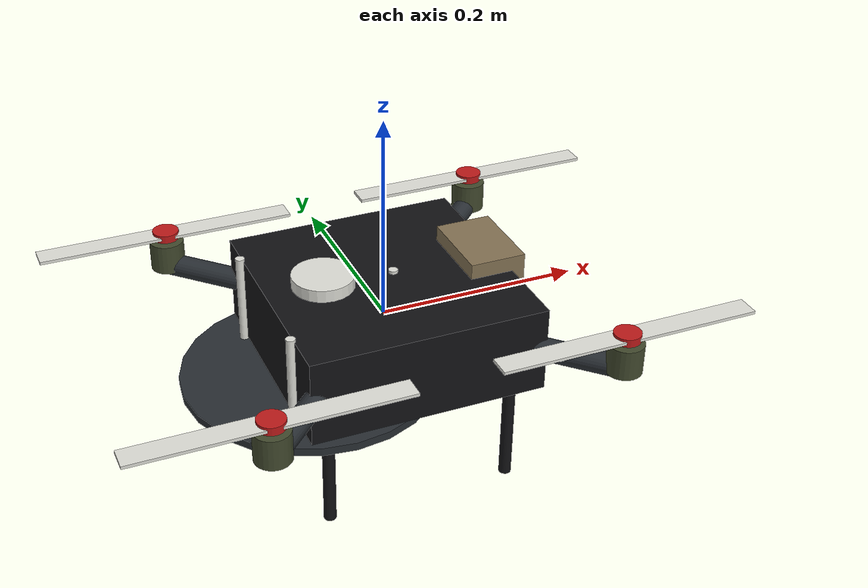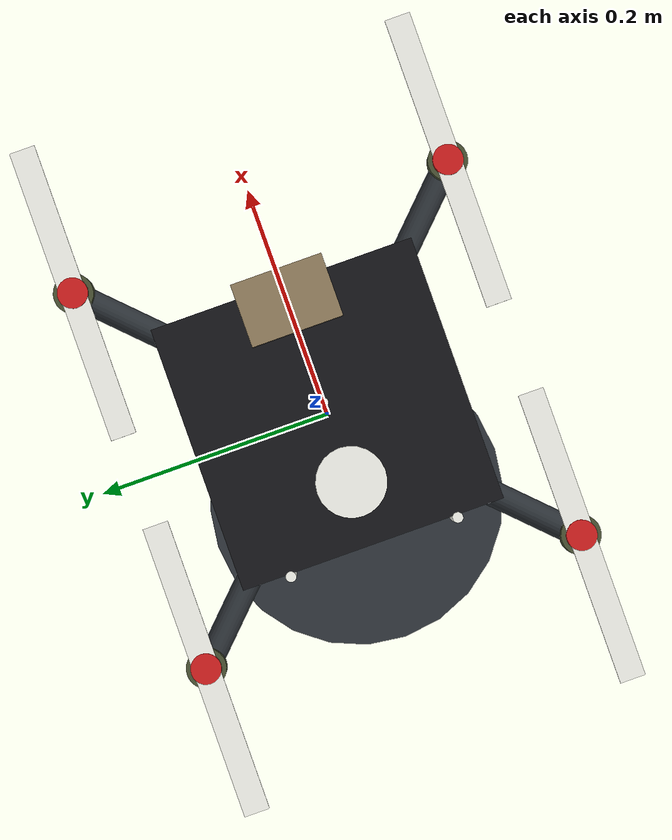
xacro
<?xml version="1.0"?>
<robot name="drone" xmlns:xacro="http://www.ros.org/wiki/xacro">

  <xacro:arg name="namespace" default="drone_1"/>
  <xacro:arg name="tf_prefix" default="drone_1"/>
  <xacro:arg name="cruise_altitude" default="14.0"/>
  <!-- When false the controller owns z directly, which is what the confirm and
       BDA tasks need; when true the plugin pins the aircraft at cruise. -->
  <xacro:arg name="hold_altitude" default="false"/>

  <xacro:property name="ns" value="$(arg namespace)"/>
  <xacro:property name="tfp" value="$(arg tf_prefix)"/>

  <xacro:include filename="$(find swarm_description)/urdf/common/materials.xacro"/>
  <xacro:include filename="$(find swarm_description)/urdf/common/inertia.xacro"/>
  <xacro:include filename="$(find swarm_description)/urdf/common/sensors.xacro"/>

  <!-- ============================ dimensions ============================= -->
  <xacro:property name="body_x" value="0.230"/>
  <xacro:property name="body_y" value="0.230"/>
  <xacro:property name="body_z" value="0.085"/>
  <xacro:property name="body_mass" value="1.35"/>

  <xacro:property name="arm_length" value="0.235"/>
  <xacro:property name="arm_radius" value="0.011"/>
  <xacro:property name="arm_mass" value="0.055"/>

  <xacro:property name="rotor_radius" value="0.127"/>
  <xacro:property name="rotor_mass" value="0.022"/>
  <!-- 45 deg arms: an X-configuration quad. -->
  <xacro:property name="arm_sweep" value="${pi/4}"/>

  <link name="base_footprint"/>
  <joint name="base_joint" type="fixed">
    <parent link="base_footprint"/>
    <child link="base_link"/>
    <origin xyz="0 0 0" rpy="0 0 0"/>
  </joint>

  <!-- =============================== body ================================ -->
  <link name="base_link">
    <visual>
      <geometry><box size="${body_x} ${body_y} ${body_z}"/></geometry>
      <material name="matte_black"/>
    </visual>
    <!-- Canopy, forward, so heading is unambiguous on screen. -->
    <visual>
      <origin xyz="${body_x/2 - 0.015} 0 ${body_z/2}"/>
      <geometry><box size="0.055 0.080 0.030"/></geometry>
      <material name="coyote_tan"/>
    </visual>
    <!-- Battery pack slung underneath. -->
    <visual>
      <origin xyz="-0.015 0 ${-body_z/2 - 0.016}"/>
      <geometry><box size="0.115 0.075 0.030"/></geometry>
      <material name="gunmetal"/>
    </visual>
    <collision>
      <geometry><box size="${body_x} ${body_y} ${body_z}"/></geometry>
    </collision>
    <xacro:box_inertial mass="${body_mass}" x="${body_x}" y="${body_y}" z="${body_z}">
      <origin xyz="0 0 0"/>
    </xacro:box_inertial>
  </link>
  <!-- ====================== arms, rotors and legs ======================== -->
  <!-- `spin` is the rotor's sense of rotation: adjacent rotors counter-rotate,
       which is what cancels yaw torque on a real X-quad. -->
  <xacro:macro name="rotor_assembly" params="name angle spin">
    <xacro:property name="ax" value="${arm_length * cos(angle)}"/>
    <xacro:property name="ay" value="${arm_length * sin(angle)}"/>

    <joint name="${name}_arm_joint" type="fixed">
      <parent link="base_link"/>
      <child link="${name}_arm_link"/>
      <origin xyz="${ax/2} ${ay/2} 0" rpy="0 ${pi/2} ${angle}"/>
    </joint>
    <link name="${name}_arm_link">
      <visual>
        <geometry><cylinder radius="${arm_radius}" length="${arm_length}"/></geometry>
        <material name="gunmetal"/>
      </visual>
      <collision>
        <geometry><cylinder radius="${arm_radius}" length="${arm_length}"/></geometry>
      </collision>
      <xacro:cylinder_inertial mass="${arm_mass}" radius="${arm_radius}" length="${arm_length}">
        <origin xyz="0 0 0"/>
      </xacro:cylinder_inertial>
    </link>
    <!-- Motor can. -->
    <joint name="${name}_motor_joint" type="fixed">
      <parent link="base_link"/>
      <child link="${name}_motor_link"/>
      <origin xyz="${ax} ${ay} 0.012" rpy="0 0 0"/>
    </joint>
    <link name="${name}_motor_link">
      <visual>
        <geometry><cylinder radius="0.017" length="0.030"/></geometry>
        <material name="olive_drab"/>
      </visual>
      <xacro:cylinder_inertial mass="0.055" radius="0.017" length="0.030">
        <origin xyz="0 0 0"/>
      </xacro:cylinder_inertial>
    </link>
    <joint name="${name}_rotor_joint" type="continuous">
      <parent link="${name}_motor_link"/>
      <child link="${name}_rotor_link"/>
      <origin xyz="0 0 0.022" rpy="0 0 0"/>
      <axis xyz="0 0 ${spin}"/>
      <limit effort="4.0" velocity="1800.0"/>
      <dynamics damping="0.0004"/>
    </joint>
    <link name="${name}_rotor_link">
      <!-- Two blades rather than a disc, so the spin is actually visible. -->
      <visual>
        <origin xyz="${rotor_radius/2} 0 0"/>
        <geometry><box size="${rotor_radius} 0.022 0.003"/></geometry>
        <material name="antenna_white"/>
      </visual>
      <visual>
        <origin xyz="${-rotor_radius/2} 0 0"/>
        <geometry><box size="${rotor_radius} 0.022 0.003"/></geometry>
        <material name="antenna_white"/>
      </visual>
      <visual>
        <geometry><cylinder radius="0.013" length="0.008"/></geometry>
        <material name="signal_red"/>
      </visual>
      <collision>
        <geometry><cylinder radius="${rotor_radius}" length="0.004"/></geometry>
      </collision>
      <xacro:cylinder_inertial mass="${rotor_mass}" radius="${rotor_radius}" length="0.004">
        <origin xyz="0 0 0"/>
      </xacro:cylinder_inertial>
    </link>
    <!-- Landing leg under each arm. -->
    <joint name="${name}_leg_joint" type="fixed">
      <parent link="base_link"/>
      <child link="${name}_leg_link"/>
      <origin xyz="${ax * 0.55} ${ay * 0.55} ${-body_z/2 - 0.055}" rpy="0 0 0"/>
    </joint>
    <link name="${name}_leg_link">
      <visual>
        <geometry><cylinder radius="0.006" length="0.110"/></geometry>
        <material name="matte_black"/>
      </visual>
      <collision>
        <geometry><cylinder radius="0.006" length="0.110"/></geometry>
      </collision>
      <xacro:cylinder_inertial mass="0.018" radius="0.006" length="0.110">
        <origin xyz="0 0 0"/>
      </xacro:cylinder_inertial>
    </link>
  </xacro:macro>

  <xacro:rotor_assembly name="rotor_fl" angle="${arm_sweep}"          spin="1"/>
  <xacro:rotor_assembly name="rotor_fr" angle="${-arm_sweep}"         spin="-1"/>
  <xacro:rotor_assembly name="rotor_rl" angle="${pi - arm_sweep}"     spin="-1"/>
  <xacro:rotor_assembly name="rotor_rr" angle="${pi + arm_sweep}"     spin="1"/>

  <!-- ============================== gimbal =============================== -->
  <!-- A 2-axis gimbal: the pan/tilt joints are real, so the confirm behaviour
       can slew the sensor to a candidate instead of yawing the whole aircraft. -->
  <joint name="gimbal_pan_joint" type="revolute">
    <parent link="base_link"/>
    <child link="gimbal_pan_link"/>
    <origin xyz="${body_x/2 - 0.045} 0 ${-body_z/2 - 0.012}" rpy="0 0 0"/>
    <axis xyz="0 0 1"/>
    <limit lower="${-pi}" upper="${pi}" effort="1.2" velocity="3.5"/>
    <dynamics damping="0.02"/>
  </joint>
  <link name="gimbal_pan_link">
    <visual>
      <geometry><cylinder radius="0.026" length="0.022"/></geometry>
      <material name="gunmetal"/>
    </visual>
    <xacro:cylinder_inertial mass="0.045" radius="0.026" length="0.022">
      <origin xyz="0 0 0"/>
    </xacro:cylinder_inertial>
  </link>
  <joint name="gimbal_tilt_joint" type="revolute">
    <parent link="gimbal_pan_link"/>
    <child link="gimbal_tilt_link"/>
    <origin xyz="0 0 -0.028" rpy="0 0 0"/>
    <axis xyz="0 1 0"/>
    <!-- Straight ahead to straight down. -->
    <limit lower="0.0" upper="${pi/2}" effort="1.2" velocity="3.5"/>
    <dynamics damping="0.02"/>
  </joint>
  <link name="gimbal_tilt_link">
    <visual>
      <geometry><box size="0.050 0.044 0.038"/></geometry>
      <material name="matte_black"/>
    </visual>
    <xacro:box_inertial mass="0.075" x="0.050" y="0.044" z="0.038">
      <origin xyz="0 0 0"/>
    </xacro:box_inertial>
  </link>
  <!-- ============================== sensors ============================== -->
  <!-- Wide-angle EO on the gimbal: the area-search sensor. -->
  <xacro:camera_rgb prefix="eo_camera" parent="gimbal_tilt_link"
                    xyz="0.026 0 0" hfov="1.7453" width="640" height="480" rate="15.0"/>

  <!-- Narrow LWIR, co-boresighted: the confirm/BDA sensor. -->
  <xacro:camera_thermal prefix="lwir" parent="gimbal_tilt_link"
                        xyz="0.020 0.034 0" width="320" height="256" rate="9.0"/>

  <!-- Downward scanner for AGL height and rooftop clearance. -->
  <xacro:lidar_2d prefix="agl" parent="base_link"
                  xyz="0 0 ${-body_z/2 - 0.012}" rpy="0 ${pi/2} 0"
                  samples="36" range_max="60.0" rate="20.0"
                  min_angle="${-0.26}" max_angle="${0.26}"/>

  <xacro:imu_sensor prefix="imu" parent="base_link" xyz="0 0 0.01" rate="200.0"/>

  <xacro:gnss_sensor prefix="gnss" parent="base_link"
                     xyz="-0.06 0 ${body_z/2 + 0.008}" noise="0.6"/>

  <!-- Airborne DF: a short baseline, so individually imprecise, but the
       altitude buys clean line of sight. The localiser weights it accordingly. -->
  <xacro:rf_df_array prefix="rf_df" parent="base_link"
                     xyz="-0.075 0 ${-body_z/2 - 0.006}"
                     elements="3" baseline="0.085" mast="0.090"
                     band_mhz="433.0" sensitivity_dbm="-104.0"/>

  <!-- ============================== plugins ============================== -->
</robot>

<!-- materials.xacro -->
<robot xmlns:xacro="http://www.ros.org/wiki/xacro">

  <material name="olive_drab"><color rgba="0.26 0.29 0.18 1.0"/></material>
  <material name="coyote_tan"><color rgba="0.52 0.45 0.33 1.0"/></material>
  <material name="gunmetal"><color rgba="0.16 0.18 0.20 1.0"/></material>
  <material name="matte_black"><color rgba="0.07 0.07 0.08 1.0"/></material>
  <material name="sensor_glass"><color rgba="0.10 0.35 0.45 0.85"/></material>
  <material name="hazard_amber"><color rgba="0.90 0.60 0.05 1.0"/></material>
  <material name="signal_red"><color rgba="0.75 0.10 0.10 1.0"/></material>
  <material name="antenna_white"><color rgba="0.88 0.88 0.85 1.0"/></material>
</robot>

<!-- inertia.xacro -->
<robot xmlns:xacro="http://www.ros.org/wiki/xacro">

  <xacro:macro name="box_inertial" params="mass x y z *origin">
    <inertial>
      <xacro:insert_block name="origin"/>
      <mass value="${mass}"/>
      <inertia
        ixx="${mass * (y*y + z*z) / 12.0}" ixy="0.0" ixz="0.0"
        iyy="${mass * (x*x + z*z) / 12.0}" iyz="0.0"
        izz="${mass * (x*x + y*y) / 12.0}"/>
    </inertial>
  </xacro:macro>

  <!-- Cylinder about its own z axis. -->
  <xacro:macro name="cylinder_inertial" params="mass radius length *origin">
    <inertial>
      <xacro:insert_block name="origin"/>
      <mass value="${mass}"/>
      <inertia
        ixx="${mass * (3.0*radius*radius + length*length) / 12.0}" ixy="0.0" ixz="0.0"
        iyy="${mass * (3.0*radius*radius + length*length) / 12.0}" iyz="0.0"
        izz="${mass * radius * radius / 2.0}"/>
    </inertial>
  </xacro:macro>

  <!-- Wheel: cylinder rolling about y, as mounted on these platforms. -->
  <xacro:macro name="wheel_inertial" params="mass radius width *origin">
    <inertial>
      <xacro:insert_block name="origin"/>
      <mass value="${mass}"/>
      <inertia
        ixx="${mass * (3.0*radius*radius + width*width) / 12.0}" ixy="0.0" ixz="0.0"
        iyy="${mass * radius * radius / 2.0}" iyz="0.0"
        izz="${mass * (3.0*radius*radius + width*width) / 12.0}"/>
    </inertial>
  </xacro:macro>

  <xacro:macro name="sphere_inertial" params="mass radius *origin">
    <inertial>
      <xacro:insert_block name="origin"/>
      <mass value="${mass}"/>
      <inertia
        ixx="${2.0 * mass * radius * radius / 5.0}" ixy="0.0" ixz="0.0"
        iyy="${2.0 * mass * radius * radius / 5.0}" iyz="0.0"
        izz="${2.0 * mass * radius * radius / 5.0}"/>
    </inertial>
  </xacro:macro>
</robot>

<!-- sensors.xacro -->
<robot xmlns:xacro="http://www.ros.org/wiki/xacro">
  <xacro:include filename="$(find swarm_description)/urdf/common/inertia.xacro"/>

  <!-- ===================== 2D scanning LiDAR ============================= -->
  <xacro:macro name="lidar_2d" params="prefix parent xyz rpy:='0 0 0'
                                       samples:=720 range_max:=30.0 rate:=15.0
                                       min_angle:=${-pi} max_angle:=${pi}">
    <joint name="${prefix}_joint" type="fixed">
      <parent link="${parent}"/>
      <child link="${prefix}_link"/>
      <origin xyz="${xyz}" rpy="${rpy}"/>
    </joint>
    <link name="${prefix}_link">
      <visual>
        <geometry><cylinder radius="0.038" length="0.055"/></geometry>
        <material name="matte_black"/>
      </visual>
      <visual>
        <origin xyz="0 0 0.034"/>
        <geometry><cylinder radius="0.030" length="0.014"/></geometry>
        <material name="sensor_glass"/>
      </visual>
      <collision><geometry><cylinder radius="0.038" length="0.055"/></geometry></collision>
      <xacro:cylinder_inertial mass="0.18" radius="0.038" length="0.055">
        <origin xyz="0 0 0"/>
      </xacro:cylinder_inertial>
    </link>
  </xacro:macro>

  <!-- =============== 3D LiDAR (tilted multi-layer scanner) =============== -->
  <xacro:macro name="lidar_3d" params="prefix parent xyz rpy:='0 0 0'
                                       h_samples:=360 v_samples:=16 range_max:=40.0 rate:=10.0">
    <joint name="${prefix}_joint" type="fixed">
      <parent link="${parent}"/>
      <child link="${prefix}_link"/>
      <origin xyz="${xyz}" rpy="${rpy}"/>
    </joint>
    <link name="${prefix}_link">
      <visual>
        <geometry><cylinder radius="0.045" length="0.072"/></geometry>
        <material name="gunmetal"/>
      </visual>
      <collision><geometry><cylinder radius="0.045" length="0.072"/></geometry></collision>
      <xacro:cylinder_inertial mass="0.42" radius="0.045" length="0.072">
        <origin xyz="0 0 0"/>
      </xacro:cylinder_inertial>
    </link>
  </xacro:macro>

  <!-- ========================= RGB camera =============================== -->
  <xacro:macro name="camera_rgb" params="prefix parent xyz rpy:='0 0 0'
                                         width:=640 height:=480 hfov:=1.3962
                                         rate:=20.0 topic:=image_raw">
    <joint name="${prefix}_joint" type="fixed">
      <parent link="${parent}"/>
      <child link="${prefix}_link"/>
      <origin xyz="${xyz}" rpy="${rpy}"/>
    </joint>
    <link name="${prefix}_link">
      <visual>
        <geometry><box size="0.028 0.090 0.028"/></geometry>
        <material name="matte_black"/>
      </visual>
      <visual>
        <origin xyz="0.016 0 0"/>
        <geometry><cylinder radius="0.011" length="0.006"/></geometry>
        <origin rpy="0 ${pi/2} 0" xyz="0.016 0 0"/>
        <material name="sensor_glass"/>
      </visual>
      <collision><geometry><box size="0.028 0.090 0.028"/></geometry></collision>
      <xacro:box_inertial mass="0.09" x="0.028" y="0.090" z="0.028">
        <origin xyz="0 0 0"/>
      </xacro:box_inertial>
    </link>
    <!-- REP-103 optical frame: z forward, x right, y down. -->
    <joint name="${prefix}_optical_joint" type="fixed">
      <parent link="${prefix}_link"/>
      <child link="${prefix}_optical_frame"/>
      <origin xyz="0 0 0" rpy="${-pi/2} 0 ${-pi/2}"/>
    </joint>
    <link name="${prefix}_optical_frame"/>
  </xacro:macro>

  <!-- ===================== Uncooled LWIR thermal ========================= -->
  <xacro:macro name="camera_thermal" params="prefix parent xyz rpy:='0 0 0'
                                             width:=320 height:=256 rate:=9.0">
    <joint name="${prefix}_joint" type="fixed">
      <parent link="${parent}"/>
      <child link="${prefix}_link"/>
      <origin xyz="${xyz}" rpy="${rpy}"/>
    </joint>
    <link name="${prefix}_link">
      <visual>
        <geometry><cylinder radius="0.021" length="0.046"/></geometry>
        <origin rpy="0 ${pi/2} 0"/>
        <material name="gunmetal"/>
      </visual>
      <collision>
        <geometry><cylinder radius="0.021" length="0.046"/></geometry>
        <origin rpy="0 ${pi/2} 0"/>
      </collision>
      <xacro:cylinder_inertial mass="0.07" radius="0.021" length="0.046">
        <origin rpy="0 ${pi/2} 0"/>
      </xacro:cylinder_inertial>
    </link>
    <joint name="${prefix}_optical_joint" type="fixed">
      <parent link="${prefix}_link"/>
      <child link="${prefix}_optical_frame"/>
      <origin xyz="0 0 0" rpy="${-pi/2} 0 ${-pi/2}"/>
    </joint>
    <link name="${prefix}_optical_frame"/>
  </xacro:macro>

  <!-- ============================= IMU ================================== -->
  <xacro:macro name="imu_sensor" params="prefix parent xyz rpy:='0 0 0' rate:=100.0">
    <joint name="${prefix}_joint" type="fixed">
      <parent link="${parent}"/>
      <child link="${prefix}_link"/>
      <origin xyz="${xyz}" rpy="${rpy}"/>
    </joint>
    <link name="${prefix}_link">
      <visual>
        <geometry><box size="0.022 0.022 0.007"/></geometry>
        <material name="hazard_amber"/>
      </visual>
      <xacro:box_inertial mass="0.012" x="0.022" y="0.022" z="0.007">
        <origin xyz="0 0 0"/>
      </xacro:box_inertial>
    </link>
  </xacro:macro>

  <!-- ===================== GNSS (degraded / jammable) ==================== -->
  <xacro:macro name="gnss_sensor" params="prefix parent xyz rate:=5.0 noise:=0.9">
    <joint name="${prefix}_joint" type="fixed">
      <parent link="${parent}"/>
      <child link="${prefix}_link"/>
      <origin xyz="${xyz}" rpy="0 0 0"/>
    </joint>
    <link name="${prefix}_link">
      <visual>
        <geometry><cylinder radius="0.030" length="0.012"/></geometry>
        <material name="antenna_white"/>
      </visual>
      <xacro:cylinder_inertial mass="0.045" radius="0.030" length="0.012">
        <origin xyz="0 0 0"/>
      </xacro:cylinder_inertial>
    </link>
  </xacro:macro>

  <!-- ================ RF direction-finding antenna array ================= -->
  <xacro:macro name="rf_df_array" params="prefix parent xyz elements:=4
                                          baseline:=0.18 mast:=0.22
                                          band_mhz:=433.0 sensitivity_dbm:=-105.0">
    <joint name="${prefix}_joint" type="fixed">
      <parent link="${parent}"/>
      <child link="${prefix}_link"/>
      <origin xyz="${xyz}" rpy="0 0 0"/>
    </joint>
    <link name="${prefix}_link">
      <!-- Ground plane the monopoles stand on. -->
      <visual>
        <geometry><cylinder radius="${baseline + 0.04}" length="0.008"/></geometry>
        <material name="gunmetal"/>
      </visual>
      <collision>
        <geometry><cylinder radius="${baseline + 0.04}" length="0.008"/></geometry>
      </collision>
      <xacro:cylinder_inertial mass="0.20" radius="${baseline + 0.04}" length="0.008">
        <origin xyz="0 0 0"/>
      </xacro:cylinder_inertial>
    </link>

    <xacro:macro name="_df_element" params="i">
      <joint name="${prefix}_el${i}_joint" type="fixed">
        <parent link="${prefix}_link"/>
        <child link="${prefix}_el${i}_link"/>
        <origin xyz="${baseline * cos(2.0 * pi * i / elements)}
                     ${baseline * sin(2.0 * pi * i / elements)}
                     ${mast / 2.0 + 0.004}" rpy="0 0 0"/>
      </joint>
      <link name="${prefix}_el${i}_link">
        <visual>
          <geometry><cylinder radius="0.0045" length="${mast}"/></geometry>
          <material name="antenna_white"/>
        </visual>
        <xacro:cylinder_inertial mass="0.015" radius="0.0045" length="${mast}">
          <origin xyz="0 0 0"/>
        </xacro:cylinder_inertial>
      </link>
    </xacro:macro>

    <xacro:_df_element i="0"/>
    <xacro:_df_element i="1"/>
    <xacro:if value="${elements &gt;= 3}"><xacro:_df_element i="2"/></xacro:if>
    <xacro:if value="${elements &gt;= 4}"><xacro:_df_element i="3"/></xacro:if>
    <xacro:if value="${elements &gt;= 5}"><xacro:_df_element i="4"/></xacro:if>
    <xacro:if value="${elements &gt;= 6}"><xacro:_df_element i="5"/></xacro:if>

    <!-- These numbers are read by swarm_gnn/threat_field_node, which supplies
         the propagation physics; the baseline below sets the bearing variance. -->
  </xacro:macro>

  <!-- ====================== CBRN point sampler =========================== -->
  <!-- Pumped intake with a short standoff: a sample is only valid within
       `standoff` metres, which is exactly why the mission plan hands this task
       to the quadruped and not to the drone. -->
  <xacro:macro name="cbrn_sampler" params="prefix parent xyz rpy:='0 0 0'
                                           standoff:=2.5 detect_threshold:=0.15">
    <joint name="${prefix}_joint" type="fixed">
      <parent link="${parent}"/>
      <child link="${prefix}_link"/>
      <origin xyz="${xyz}" rpy="${rpy}"/>
    </joint>
    <link name="${prefix}_link">
      <visual>
        <geometry><box size="0.070 0.048 0.048"/></geometry>
        <material name="hazard_amber"/>
      </visual>
      <!-- Intake snorkel. -->
      <visual>
        <origin xyz="0.046 0 -0.010" rpy="0 ${pi/2} 0"/>
        <geometry><cylinder radius="0.008" length="0.040"/></geometry>
        <material name="matte_black"/>
      </visual>
      <collision><geometry><box size="0.070 0.048 0.048"/></geometry></collision>
      <xacro:box_inertial mass="0.26" x="0.070" y="0.048" z="0.048">
        <origin xyz="0 0 0"/>
      </xacro:box_inertial>
    </link>
  </xacro:macro>

  <!-- ================= Jammer-marker dispenser (UGV) ===================== -->
  <!-- Carries `capacity` expendable RF markers. Emplacing one is the mission's
       terminal action on a confirmed emitter; the count is a hard resource
       constraint the allocator has to respect. -->
  <xacro:macro name="marker_dispenser" params="prefix parent xyz capacity:=4">
    <joint name="${prefix}_joint" type="fixed">
      <parent link="${parent}"/>
      <child link="${prefix}_link"/>
      <origin xyz="${xyz}" rpy="0 0 0"/>
    </joint>
    <link name="${prefix}_link">
      <visual>
        <geometry><box size="0.130 0.110 0.090"/></geometry>
        <material name="olive_drab"/>
      </visual>
      <visual>
        <origin xyz="0 0 -0.050"/>
        <geometry><cylinder radius="0.030" length="0.014"/></geometry>
        <material name="signal_red"/>
      </visual>
      <collision><geometry><box size="0.130 0.110 0.090"/></geometry></collision>
      <xacro:box_inertial mass="${0.6 + 0.25 * capacity}" x="0.130" y="0.110" z="0.090">
        <origin xyz="0 0 0"/>
      </xacro:box_inertial>
    </link>
  </xacro:macro>
</robot>
